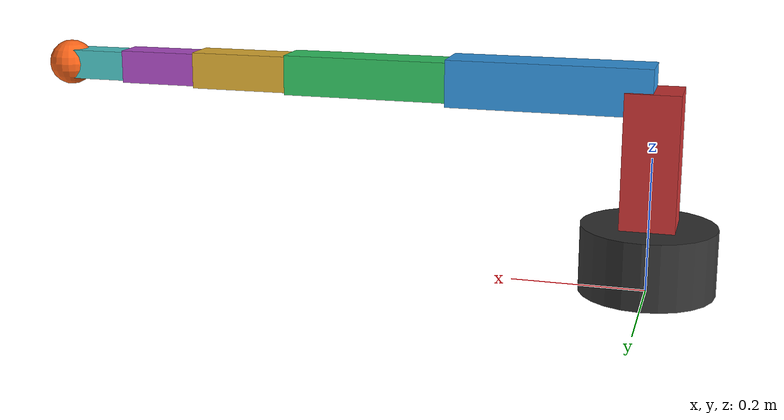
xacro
<?xml version="1.0"?>

<robot xmlns:xacro="http://www.ros.org/wiki/xacro"
       name="six_dof_arm">

  <xacro:arg name="controller_yaml" default=""/>

  <!-- WORLD                                                     -->

  <link name="world"/>

  <!-- BASE                                                      -->

  <link name="base_link">

    <visual>
      <origin xyz="0 0 0.05"/>
      <geometry>
        <cylinder radius="0.10" length="0.10"/>
      </geometry>

      <material name="base_color">
        <color rgba="0.2 0.2 0.2 1"/>
      </material>
    </visual>

    <collision>
      <origin xyz="0 0 0.05"/>
      <geometry>
        <cylinder radius="0.10" length="0.10"/>
      </geometry>
    </collision>

    <inertial>
      <origin xyz="0 0 0.05"/>
      <mass value="2.0"/>
      <inertia
        ixx="0.01"
        ixy="0.0"
        ixz="0.0"
        iyy="0.01"
        iyz="0.0"
        izz="0.01"/>
    </inertial>

  </link>

  <!-- Attach the base to the world -->

  <joint name="world_to_base" type="fixed">
    <parent link="world"/>
    <child link="base_link"/>
    <origin xyz="0 0 0"/>
  </joint>

  <!-- LINK 1                                                    -->

  <link name="link_1">

    <visual>
      <origin xyz="0 0 0.10"/>
      <geometry>
        <box size="0.08 0.08 0.20"/>
      </geometry>
      <material name="link1_color">
        <color rgba="0.8 0.2 0.2 1"/>
      </material>
    </visual>

    <collision>
      <origin xyz="0 0 0.10"/>
      <geometry>
        <box size="0.08 0.08 0.20"/>
      </geometry>
    </collision>

    <inertial>
      <origin xyz="0 0 0.10"/>
      <mass value="1.0"/>
      <inertia
        ixx="0.005"
        ixy="0"
        ixz="0"
        iyy="0.005"
        iyz="0"
        izz="0.005"/>
    </inertial>

  </link>

  <joint name="joint_1" type="revolute">

    <parent link="base_link"/>
    <child link="link_1"/>

    <origin xyz="0 0 0.10"/>

    <axis xyz="0 0 1"/>

    <limit
      lower="-3.14"
      upper="3.14"
      effort="50"
      velocity="2.0"/>

    <dynamics damping="0.2"/>

  </joint>

  <!-- LINK 2                                                    -->

  <link name="link_2">

    <visual>
      <origin xyz="0.15 0 0"/>
      <geometry>
        <box size="0.30 0.07 0.07"/>
      </geometry>
      <material name="link2_color">
        <color rgba="0.2 0.6 0.9 1"/>
      </material>
    </visual>

    <collision>
      <origin xyz="0.15 0 0"/>
      <geometry>
        <box size="0.30 0.07 0.07"/>
      </geometry>
    </collision>

    <inertial>
      <origin xyz="0.15 0 0"/>
      <mass value="0.8"/>
      <inertia
        ixx="0.004"
        ixy="0"
        ixz="0"
        iyy="0.008"
        iyz="0"
        izz="0.008"/>
    </inertial>

  </link>

  <joint name="joint_2" type="revolute">

    <parent link="link_1"/>
    <child link="link_2"/>

    <origin xyz="0 0 0.20"/>

    <axis xyz="0 1 0"/>

    <limit
      lower="-1.57"
      upper="1.57"
      effort="50"
      velocity="2.0"/>

    <dynamics damping="0.2"/>

  </joint>

  <!-- LINK 3                                                    -->

  <link name="link_3">

    <visual>
      <origin xyz="0.125 0 0"/>
      <geometry>
        <box size="0.25 0.06 0.06"/>
      </geometry>
      <material name="link3_color">
        <color rgba="0.2 0.8 0.4 1"/>
      </material>
    </visual>

    <collision>
      <origin xyz="0.125 0 0"/>
      <geometry>
        <box size="0.25 0.06 0.06"/>
      </geometry>
    </collision>

    <inertial>
      <origin xyz="0.125 0 0"/>
      <mass value="0.6"/>
      <inertia
        ixx="0.003"
        ixy="0"
        ixz="0"
        iyy="0.006"
        iyz="0"
        izz="0.006"/>
    </inertial>

  </link>

  <joint name="joint_3" type="revolute">

    <parent link="link_2"/>
    <child link="link_3"/>

    <origin xyz="0.30 0 0"/>

    <axis xyz="0 1 0"/>

    <limit
      lower="-2.20"
      upper="2.20"
      effort="40"
      velocity="2.0"/>

    <dynamics damping="0.2"/>

  </joint>

  <!-- LINK 4                                                    -->

  <link name="link_4">

    <visual>
      <origin xyz="0.075 0 0"/>
      <geometry>
        <box size="0.15 0.055 0.055"/>
      </geometry>
      <material name="link4_color">
        <color rgba="0.9 0.7 0.2 1"/>
      </material>
    </visual>

    <collision>
      <origin xyz="0.075 0 0"/>
      <geometry>
        <box size="0.15 0.055 0.055"/>
      </geometry>
    </collision>

    <inertial>
      <origin xyz="0.075 0 0"/>
      <mass value="0.4"/>
      <inertia
        ixx="0.002"
        ixy="0"
        ixz="0"
        iyy="0.003"
        iyz="0"
        izz="0.003"/>
    </inertial>

  </link>

  <joint name="joint_4" type="revolute">

    <parent link="link_3"/>
    <child link="link_4"/>

    <origin xyz="0.25 0 0"/>

    <axis xyz="1 0 0"/>

    <limit
      lower="-3.14"
      upper="3.14"
      effort="30"
      velocity="2.5"/>

    <dynamics damping="0.15"/>

  </joint>

  <!-- LINK 5                                                    -->

  <link name="link_5">

    <visual>
      <origin xyz="0.06 0 0"/>
      <geometry>
        <box size="0.12 0.05 0.05"/>
      </geometry>
      <material name="link5_color">
        <color rgba="0.7 0.3 0.8 1"/>
      </material>
    </visual>

    <collision>
      <origin xyz="0.06 0 0"/>
      <geometry>
        <box size="0.12 0.05 0.05"/>
      </geometry>
    </collision>

    <inertial>
      <origin xyz="0.06 0 0"/>
      <mass value="0.3"/>
      <inertia
        ixx="0.001"
        ixy="0"
        ixz="0"
        iyy="0.002"
        iyz="0"
        izz="0.002"/>
    </inertial>

  </link>

  <joint name="joint_5" type="revolute">

    <parent link="link_4"/>
    <child link="link_5"/>

    <origin xyz="0.15 0 0"/>

    <axis xyz="0 1 0"/>

    <limit
      lower="-2.0"
      upper="2.0"
      effort="25"
      velocity="2.5"/>

    <dynamics damping="0.15"/>

  </joint>

  <!-- LINK 6                                                    -->

  <link name="link_6">

    <visual>
      <origin xyz="0.05 0 0"/>
      <geometry>
        <box size="0.10 0.045 0.045"/>
      </geometry>
      <material name="link6_color">
        <color rgba="0.3 0.8 0.8 1"/>
      </material>
    </visual>

    <collision>
      <origin xyz="0.05 0 0"/>
      <geometry>
        <box size="0.10 0.045 0.045"/>
      </geometry>
    </collision>

    <inertial>
      <origin xyz="0.05 0 0"/>
      <mass value="0.2"/>
      <inertia
        ixx="0.001"
        ixy="0"
        ixz="0"
        iyy="0.0015"
        iyz="0"
        izz="0.0015"/>
    </inertial>

  </link>

  <joint name="joint_6" type="revolute">

    <parent link="link_5"/>
    <child link="link_6"/>

    <origin xyz="0.12 0 0"/>

    <axis xyz="1 0 0"/>

    <limit
      lower="-3.14"
      upper="3.14"
      effort="20"
      velocity="3.0"/>

    <dynamics damping="0.1"/>

  </joint>

  <!-- END EFFECTOR                                              -->

  <link name="tool_link">

    <visual>
      <geometry>
        <sphere radius="0.035"/>
      </geometry>
      <material name="tool_color">
        <color rgba="1 0.4 0.1 1"/>
      </material>
    </visual>

    <collision>
      <geometry>
        <sphere radius="0.035"/>
      </geometry>
    </collision>

    <inertial>
      <mass value="0.1"/>
      <inertia
        ixx="0.0001"
        ixy="0"
        ixz="0"
        iyy="0.0001"
        iyz="0"
        izz="0.0001"/>
    </inertial>

  </link>

  <joint name="tool_joint" type="fixed">

    <parent link="link_6"/>
    <child link="tool_link"/>

    <origin xyz="0.10 0 0"/>

  </joint>

  <!-- ROS 2 CONTROL                                             -->

  <ros2_control
    name="GazeboSimSystem"
    type="system">

    <hardware>
      <plugin>gz_ros2_control/GazeboSimSystem</plugin>
    </hardware>

    <joint name="joint_1">

      <command_interface name="position">
        <param name="min">-3.14</param>
        <param name="max">3.14</param>
      </command_interface>

      <state_interface name="position">
        <param name="initial_value">0.0</param>
      </state_interface>

      <state_interface name="velocity"/>

    </joint>

    <joint name="joint_2">

      <command_interface name="position">
        <param name="min">-1.57</param>
        <param name="max">1.57</param>
      </command_interface>

      <state_interface name="position">
        <param name="initial_value">0.0</param>
      </state_interface>

      <state_interface name="velocity"/>

    </joint>

    <joint name="joint_3">

      <command_interface name="position">
        <param name="min">-2.20</param>
        <param name="max">2.20</param>
      </command_interface>

      <state_interface name="position">
        <param name="initial_value">0.0</param>
      </state_interface>

      <state_interface name="velocity"/>

    </joint>

    <joint name="joint_4">

      <command_interface name="position">
        <param name="min">-3.14</param>
        <param name="max">3.14</param>
      </command_interface>

      <state_interface name="position">
        <param name="initial_value">0.0</param>
      </state_interface>

      <state_interface name="velocity"/>

    </joint>

    <joint name="joint_5">

      <command_interface name="position">
        <param name="min">-2.0</param>
        <param name="max">2.0</param>
      </command_interface>

      <state_interface name="position">
        <param name="initial_value">0.0</param>
      </state_interface>

      <state_interface name="velocity"/>

    </joint>

    <joint name="joint_6">

      <command_interface name="position">
        <param name="min">-3.14</param>
        <param name="max">3.14</param>
      </command_interface>

      <state_interface name="position">
        <param name="initial_value">0.0</param>
      </state_interface>

      <state_interface name="velocity"/>

    </joint>

  </ros2_control>

  <!-- Gazebo plugin that connects Gazebo to ros2_control -->

  <gazebo>

    <plugin
      filename="libgz_ros2_control-system.so"
      name="gz_ros2_control::GazeboSimROS2ControlPlugin">

      <parameters>$(arg controller_yaml)</parameters>

    </plugin>

  </gazebo>

</robot>
